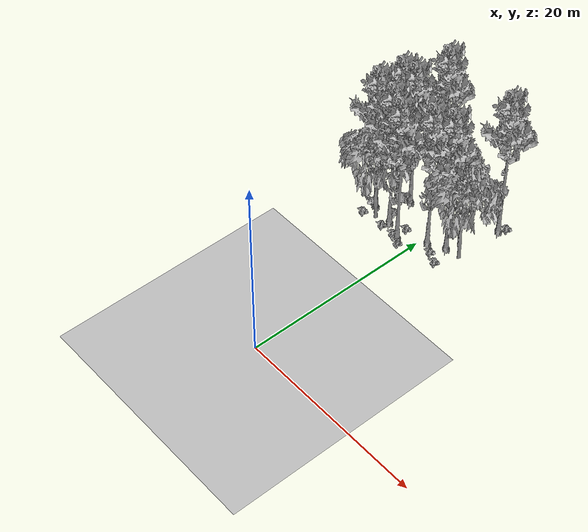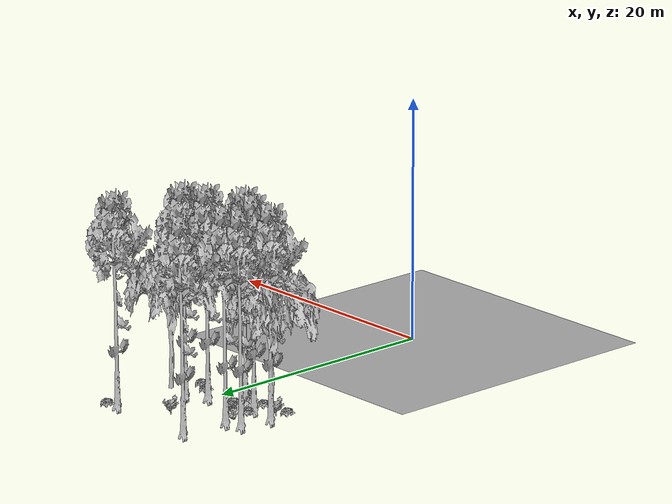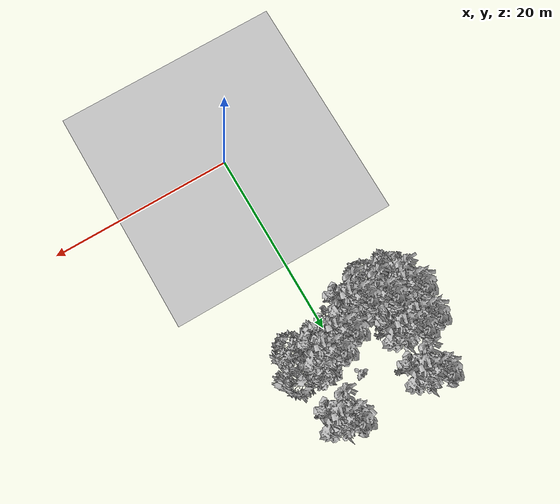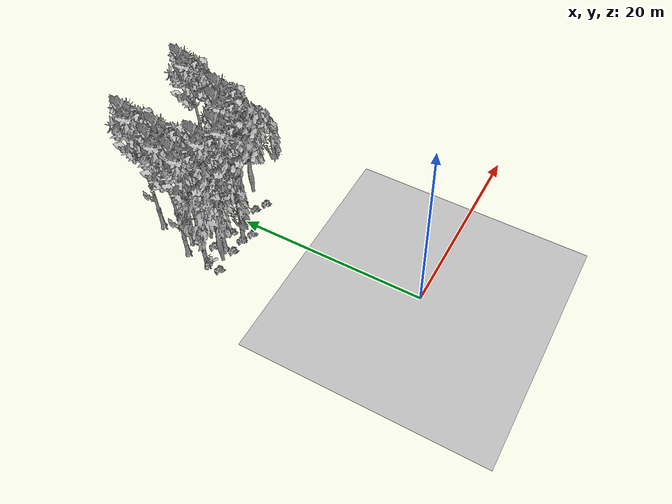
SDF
<sdf version="1.7">
 <world name="default">
  <model name="ground_plane">
   <static>1</static>
   <link name="link">
    <collision name="collision">
     <pose>-50 0 0 0 -0 0</pose>
     <geometry><plane><normal>0 0 1</normal><size>80 80</size></plane></geometry>
     <surface><contact><ode><min_depth>0.01</min_depth><max_vel>0</max_vel></ode></contact></surface>
    </collision>
    <visual name="grass">
     <cast_shadows>0</cast_shadows>
     <geometry>
      <mesh>
       <scale>0.46714285714285714 0.46714285714285714 0.1</scale>
       <uri>file://grass_plane/meshes/grass_plane.dae</uri>
      </mesh>
     </geometry>
    </visual>
   </link>
  </model>
  <model name="Tree 24">
   <static>1</static>
   <pose>-4.373454652179674 27.52931438960772 0 1.57079 -0 0</pose>
   <link name="link">
    <collision name="collision">
     <geometry><mesh><scale>3.5 5 3.5</scale><uri>model://tree_9/meshes/tree_9.obj</uri></mesh></geometry>
    </collision>
    <visual name="visual">
     <geometry><mesh><scale>3.5 5 3.5</scale><uri>model://tree_9/meshes/tree_9.obj</uri></mesh></geometry>
    </visual>
   </link>
  </model>
  <model name="Tree 48">
   <static>1</static>
   <pose>-4.6155218401029146 23.53953368339483 0 1.57079 -0 0</pose>
   <link name="link">
    <collision name="collision">
     <geometry><mesh><scale>3.5 5 3.5</scale><uri>model://tree_9/meshes/tree_9.obj</uri></mesh></geometry>
    </collision>
    <visual name="visual">
     <geometry><mesh><scale>3.5 5 3.5</scale><uri>model://tree_9/meshes/tree_9.obj</uri></mesh></geometry>
    </visual>
   </link>
  </model>
  <model name="Tree 178">
   <static>1</static>
   <pose>-5.291619955261581 19.414037031293184 0 1.57079 -0 0</pose>
   <link name="link">
    <collision name="collision">
     <geometry><mesh><scale>3.5 5 3.5</scale><uri>model://tree_2/meshes/tree_2.obj</uri></mesh></geometry>
    </collision>
    <visual name="visual">
     <geometry><mesh><scale>3.5 5 3.5</scale><uri>model://tree_2/meshes/tree_2.obj</uri></mesh></geometry>
    </visual>
   </link>
  </model>
  <model name="Tree 179">
   <static>1</static>
   <pose>-3.8811041414405025 20.05474121261046 0 1.57079 -0 0</pose>
   <link name="link">
    <collision name="collision">
     <geometry><mesh><scale>3.5 5 3.5</scale><uri>model://tree_9/meshes/tree_9.obj</uri></mesh></geometry>
    </collision>
    <visual name="visual">
     <geometry><mesh><scale>3.5 5 3.5</scale><uri>model://tree_9/meshes/tree_9.obj</uri></mesh></geometry>
    </visual>
   </link>
  </model>
  <model name="Tree 212">
   <static>1</static>
   <pose>-6.0118120652431415 23.175723785837235 0 1.57079 -0 0</pose>
   <link name="link">
    <collision name="collision">
     <geometry><mesh><scale>3.5 5 3.5</scale><uri>model://tree_9/meshes/tree_9.obj</uri></mesh></geometry>
    </collision>
    <visual name="visual">
     <geometry><mesh><scale>3.5 5 3.5</scale><uri>model://tree_9/meshes/tree_9.obj</uri></mesh></geometry>
    </visual>
   </link>
  </model>
  <model name="Tree 310">
   <static>1</static>
   <pose>2.2215270459437164 21.805459275492495 0 1.57079 -0 0</pose>
   <link name="link">
    <collision name="collision">
     <geometry><mesh><scale>3.5 5 3.5</scale><uri>model://tree_9/meshes/tree_9.obj</uri></mesh></geometry>
    </collision>
    <visual name="visual">
     <geometry><mesh><scale>3.5 5 3.5</scale><uri>model://tree_9/meshes/tree_9.obj</uri></mesh></geometry>
    </visual>
   </link>
  </model>
  <model name="Tree 313">
   <static>1</static>
   <pose>-6.405141683827225 20.538110005257238 0 1.57079 -0 0</pose>
   <link name="link">
    <collision name="collision">
     <geometry><mesh><scale>3.5 5 3.5</scale><uri>model://tree_9/meshes/tree_9.obj</uri></mesh></geometry>
    </collision>
    <visual name="visual">
     <geometry><mesh><scale>3.5 5 3.5</scale><uri>model://tree_9/meshes/tree_9.obj</uri></mesh></geometry>
    </visual>
   </link>
  </model>
  <model name="Tree 318">
   <static>1</static>
   <pose>0.5548436894300934 20.914603305642324 0 1.57079 -0 0</pose>
   <link name="link">
    <collision name="collision">
     <geometry><mesh><scale>3.5 5 3.5</scale><uri>model://tree_9/meshes/tree_9.obj</uri></mesh></geometry>
    </collision>
    <visual name="visual">
     <geometry><mesh><scale>3.5 5 3.5</scale><uri>model://tree_9/meshes/tree_9.obj</uri></mesh></geometry>
    </visual>
   </link>
  </model>
  <model name="Tree 435">
   <static>1</static>
   <pose>-1.8974644579086473 19.21317690924127 0 1.57079 -0 0</pose>
   <link name="link">
    <collision name="collision">
     <geometry><mesh><scale>3.5 5 3.5</scale><uri>model://tree_9/meshes/tree_9.obj</uri></mesh></geometry>
    </collision>
    <visual name="visual">
     <geometry><mesh><scale>3.5 5 3.5</scale><uri>model://tree_9/meshes/tree_9.obj</uri></mesh></geometry>
    </visual>
   </link>
  </model>
  <model name="Tree 505">
   <static>1</static>
   <pose>3.8605695405650238 27.25193160972107 0 1.57079 -0 0</pose>
   <link name="link">
    <collision name="collision">
     <geometry><mesh><scale>3.5 5 3.5</scale><uri>model://tree_9/meshes/tree_9.obj</uri></mesh></geometry>
    </collision>
    <visual name="visual">
     <geometry><mesh><scale>3.5 5 3.5</scale><uri>model://tree_9/meshes/tree_9.obj</uri></mesh></geometry>
    </visual>
   </link>
  </model>
  <model name="Tree 607">
   <static>1</static>
   <pose>3.8493392297121076 21.773992025306264 0 1.57079 -0 0</pose>
   <link name="link">
    <collision name="collision">
     <geometry><mesh><scale>3.5 5 3.5</scale><uri>model://tree_2/meshes/tree_2.obj</uri></mesh></geometry>
    </collision>
    <visual name="visual">
     <geometry><mesh><scale>3.5 5 3.5</scale><uri>model://tree_2/meshes/tree_2.obj</uri></mesh></geometry>
    </visual>
   </link>
  </model>
  <model name="Bush 50">
   <static>1</static>
   <pose>-4.75396749069666 22.891660186167556 0 1.57079 -0 0</pose>
   <link name="link">
    <collision name="collision">
     <geometry><mesh><scale>2 2 2</scale><uri>model://bush_4/meshes/bush_4.obj</uri></mesh></geometry>
     <surface><contact><collide_without_contact>false</collide_without_contact></contact></surface>
    </collision>
    <visual name="visual">
     <geometry><mesh><scale>2 2 2</scale><uri>model://bush_4/meshes/bush_4.obj</uri></mesh></geometry>
    </visual>
   </link>
  </model>
  <model name="Bush 55">
   <static>1</static>
   <pose>-1.996854189234604 20.46943983292425 0 1.57079 -0 0</pose>
   <link name="link">
    <collision name="collision">
     <geometry><mesh><scale>2 2 2</scale><uri>model://bush_2/meshes/bush_2.obj</uri></mesh></geometry>
     <surface><contact><collide_without_contact>false</collide_without_contact></contact></surface>
    </collision>
    <visual name="visual">
     <geometry><mesh><scale>2 2 2</scale><uri>model://bush_2/meshes/bush_2.obj</uri></mesh></geometry>
    </visual>
   </link>
  </model>
  <model name="Bush 79">
   <static>1</static>
   <pose>-6.363761896530619 19.990348745200272 0 1.57079 -0 0</pose>
   <link name="link">
    <collision name="collision">
     <geometry><mesh><scale>2 2 2</scale><uri>model://bush_0/meshes/bush_0.obj</uri></mesh></geometry>
     <surface><contact><collide_without_contact>false</collide_without_contact></contact></surface>
    </collision>
    <visual name="visual">
     <geometry><mesh><scale>2 2 2</scale><uri>model://bush_0/meshes/bush_0.obj</uri></mesh></geometry>
    </visual>
   </link>
  </model>
  <model name="Bush 127">
   <static>1</static>
   <pose>-1.2092879789347464 18.5357770801116 0 1.57079 -0 0</pose>
   <link name="link">
    <collision name="collision">
     <geometry><mesh><scale>2 2 2</scale><uri>model://bush_2/meshes/bush_2.obj</uri></mesh></geometry>
     <surface><contact><collide_without_contact>false</collide_without_contact></contact></surface>
    </collision>
    <visual name="visual">
     <geometry><mesh><scale>2 2 2</scale><uri>model://bush_2/meshes/bush_2.obj</uri></mesh></geometry>
    </visual>
   </link>
  </model>
  <model name="Bush 130">
   <static>1</static>
   <pose>1.7215835022397101 20.081366338343898 0 1.57079 -0 0</pose>
   <link name="link">
    <collision name="collision">
     <geometry><mesh><scale>2 2 2</scale><uri>model://bush_2/meshes/bush_2.obj</uri></mesh></geometry>
     <surface><contact><collide_without_contact>false</collide_without_contact></contact></surface>
    </collision>
    <visual name="visual">
     <geometry><mesh><scale>2 2 2</scale><uri>model://bush_2/meshes/bush_2.obj</uri></mesh></geometry>
    </visual>
   </link>
  </model>
  <model name="Bush 185">
   <static>1</static>
   <pose>-6.552904019518252 18.92539594840136 0 1.57079 -0 0</pose>
   <link name="link">
    <collision name="collision">
     <geometry><mesh><scale>2 2 2</scale><uri>model://bush_2/meshes/bush_2.obj</uri></mesh></geometry>
     <surface><contact><collide_without_contact>false</collide_without_contact></contact></surface>
    </collision>
    <visual name="visual">
     <geometry><mesh><scale>2 2 2</scale><uri>model://bush_2/meshes/bush_2.obj</uri></mesh></geometry>
    </visual>
   </link>
  </model>
  <model name="Bush 273">
   <static>1</static>
   <pose>-4.400757382175243 21.07495623908241 0 1.57079 -0 0</pose>
   <link name="link">
    <collision name="collision">
     <geometry><mesh><scale>2 2 2</scale><uri>model://bush_2/meshes/bush_2.obj</uri></mesh></geometry>
     <surface><contact><collide_without_contact>false</collide_without_contact></contact></surface>
    </collision>
    <visual name="visual">
     <geometry><mesh><scale>2 2 2</scale><uri>model://bush_2/meshes/bush_2.obj</uri></mesh></geometry>
    </visual>
   </link>
  </model>
  <model name="Bush 274">
   <static>1</static>
   <pose>2.9148964027980284 19.488878361714477 0 1.57079 -0 0</pose>
   <link name="link">
    <collision name="collision">
     <geometry><mesh><scale>2 2 2</scale><uri>model://bush_2/meshes/bush_2.obj</uri></mesh></geometry>
     <surface><contact><collide_without_contact>false</collide_without_contact></contact></surface>
    </collision>
    <visual name="visual">
     <geometry><mesh><scale>2 2 2</scale><uri>model://bush_2/meshes/bush_2.obj</uri></mesh></geometry>
    </visual>
   </link>
  </model>
  <model name="Bush 278">
   <static>1</static>
   <pose>-0.7335432037137579 25.73588571422951 0 1.57079 -0 0</pose>
   <link name="link">
    <collision name="collision">
     <geometry><mesh><scale>2 2 2</scale><uri>model://bush_0/meshes/bush_0.obj</uri></mesh></geometry>
     <surface><contact><collide_without_contact>false</collide_without_contact></contact></surface>
    </collision>
    <visual name="visual">
     <geometry><mesh><scale>2 2 2</scale><uri>model://bush_0/meshes/bush_0.obj</uri></mesh></geometry>
    </visual>
   </link>
  </model>
  <model name="Bush 443">
   <static>1</static>
   <pose>4.335784809337909 27.81206505419101 0 1.57079 -0 0</pose>
   <link name="link">
    <collision name="collision">
     <geometry><mesh><scale>2 2 2</scale><uri>model://bush_2/meshes/bush_2.obj</uri></mesh></geometry>
     <surface><contact><collide_without_contact>false</collide_without_contact></contact></surface>
    </collision>
    <visual name="visual">
     <geometry><mesh><scale>2 2 2</scale><uri>model://bush_2/meshes/bush_2.obj</uri></mesh></geometry>
    </visual>
   </link>
  </model>
  <model name="Bush 519">
   <static>1</static>
   <pose>-3.9594346379738496 19.053868768786437 0 1.57079 -0 0</pose>
   <link name="link">
    <collision name="collision">
     <geometry><mesh><scale>2 2 2</scale><uri>model://bush_2/meshes/bush_2.obj</uri></mesh></geometry>
     <surface><contact><collide_without_contact>false</collide_without_contact></contact></surface>
    </collision>
    <visual name="visual">
     <geometry><mesh><scale>2 2 2</scale><uri>model://bush_2/meshes/bush_2.obj</uri></mesh></geometry>
    </visual>
   </link>
  </model>
  <model name="Bush 591">
   <static>1</static>
   <pose>-2.4138613947636784 19.049314919593662 0 1.57079 -0 0</pose>
   <link name="link">
    <collision name="collision">
     <geometry><mesh><scale>2 2 2</scale><uri>model://bush_2/meshes/bush_2.obj</uri></mesh></geometry>
     <surface><contact><collide_without_contact>false</collide_without_contact></contact></surface>
    </collision>
    <visual name="visual">
     <geometry><mesh><scale>2 2 2</scale><uri>model://bush_2/meshes/bush_2.obj</uri></mesh></geometry>
    </visual>
   </link>
  </model>
 </world>
</sdf>
